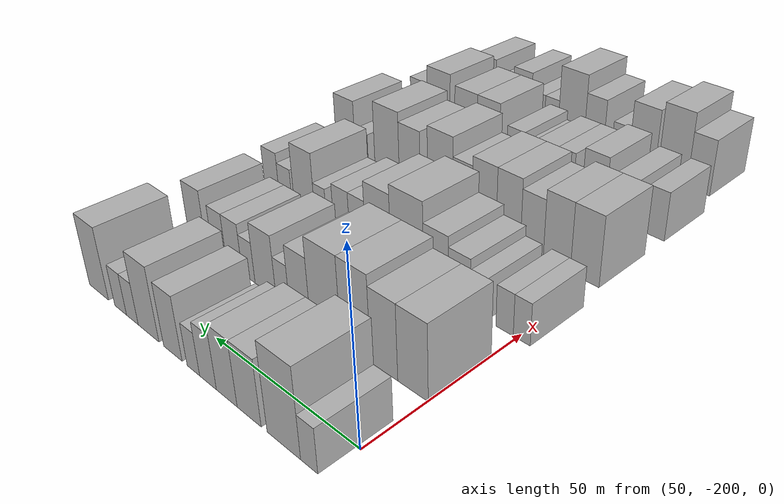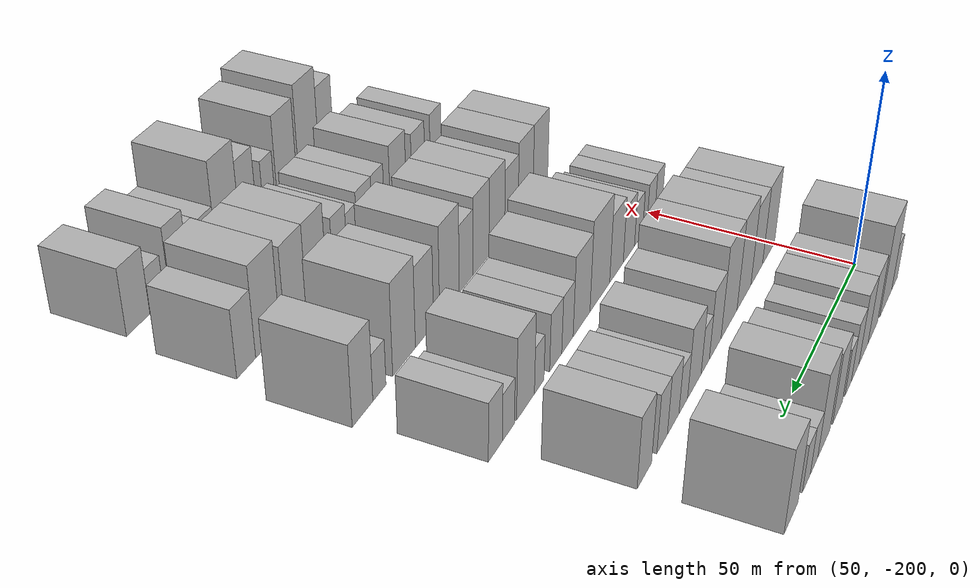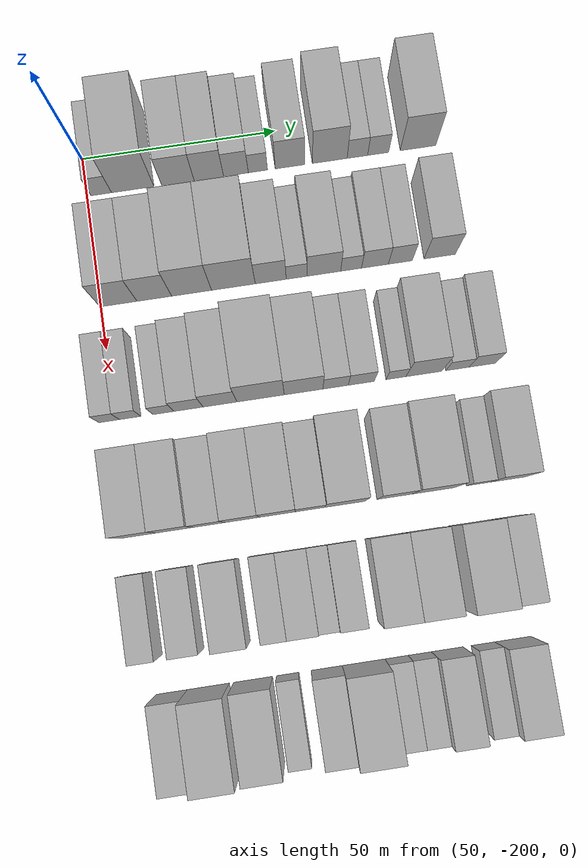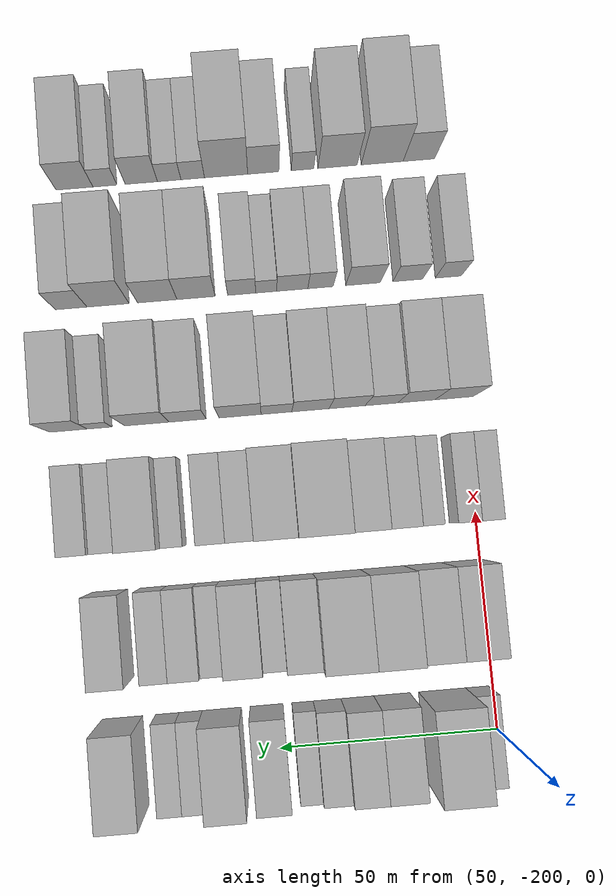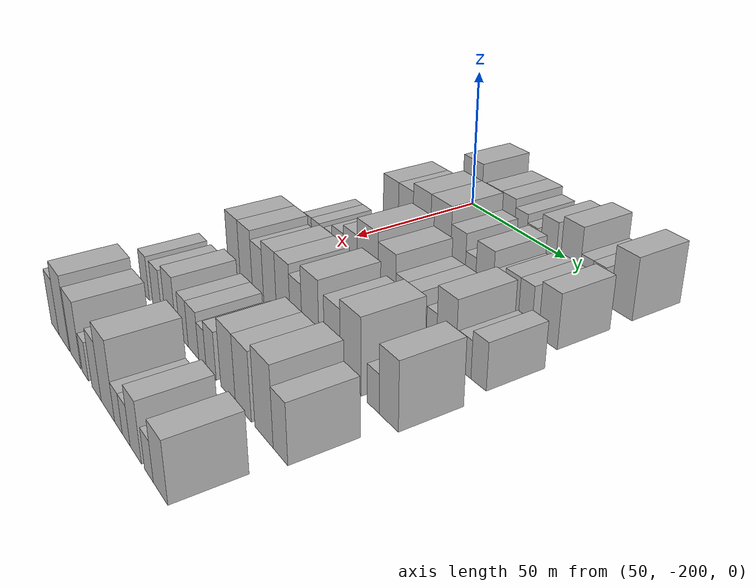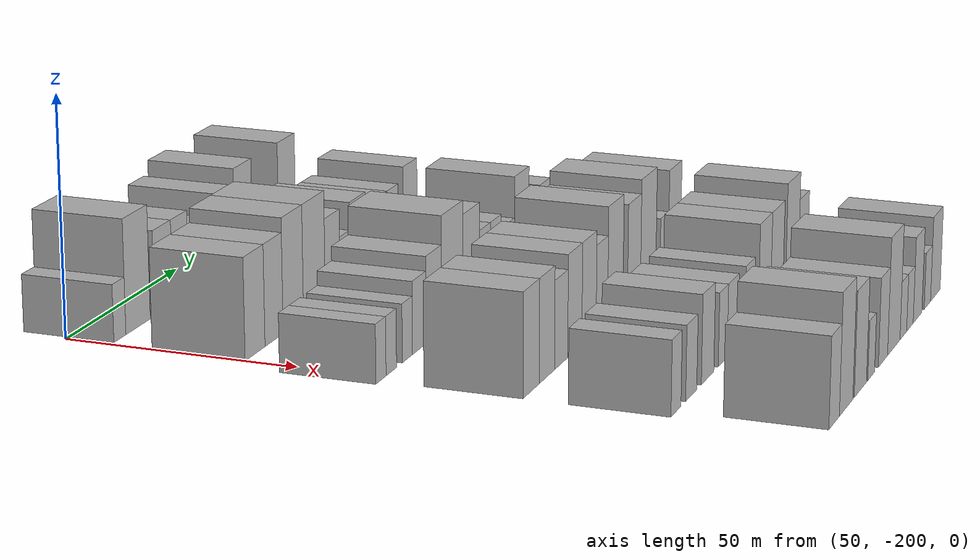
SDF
<sdf version="1.6">
 <world name="default">
  <model name="building_36">
   <static>1</static>
   <pose>50.0000 -196.2455 0 0.000000 0.000000 0.000000</pose>
   <link name="link">
    <pose>0 0 6.00 0 0 0</pose>
    <collision name="collision"><geometry><box><size>20.0000 5.2864 12.0000</size></box></geometry></collision>
    <visual name="visual">
     <cast_shadows>0</cast_shadows>
     <geometry><box><size>20.0000 5.2864 12.0000</size></box></geometry>
     <material>
      <script>
       <uri>model://HANNAS_wall/materials/scripts</uri>
       <uri>model://HANNAS_wall/materials/textures</uri>
       <name>vrc/HANNAS_wall</name>
      </script>
     </material>
    </visual>
   </link>
  </model>
  <model name="building_37">
   <static>1</static>
   <pose>50.0000 -188.1614 0 0.000000 0.000000 0.000000</pose>
   <link name="link">
    <pose>0 0 12.00 0 0 0</pose>
    <collision name="collision"><geometry><box><size>20.0000 10.8818 24.0000</size></box></geometry></collision>
    <visual name="visual">
     <cast_shadows>0</cast_shadows>
     <geometry><box><size>20.0000 10.8818 24.0000</size></box></geometry>
     <material>
      <script>
       <uri>model://HANNAS_wall/materials/scripts</uri>
       <uri>model://HANNAS_wall/materials/textures</uri>
       <name>vrc/HANNAS_wall</name>
      </script>
     </material>
    </visual>
   </link>
  </model>
  <model name="building_38">
   <static>1</static>
   <pose>50.0000 -176.5439 0 0.000000 0.000000 0.000000</pose>
   <link name="link">
    <pose>0 0 9.00 0 0 0</pose>
    <collision name="collision"><geometry><box><size>20.0000 8.3533 18.0000</size></box></geometry></collision>
    <visual name="visual">
     <cast_shadows>0</cast_shadows>
     <geometry><box><size>20.0000 8.3533 18.0000</size></box></geometry>
     <material>
      <script>
       <uri>model://HANNAS_wall/materials/scripts</uri>
       <uri>model://HANNAS_wall/materials/textures</uri>
       <name>vrc/HANNAS_wall</name>
      </script>
     </material>
    </visual>
   </link>
  </model>
  <model name="building_39">
   <static>1</static>
   <pose>50.0000 -168.5732 0 0.000000 0.000000 0.000000</pose>
   <link name="link">
    <pose>0 0 9.00 0 0 0</pose>
    <collision name="collision"><geometry><box><size>20.0000 7.5881 18.0000</size></box></geometry></collision>
    <visual name="visual">
     <cast_shadows>0</cast_shadows>
     <geometry><box><size>20.0000 7.5881 18.0000</size></box></geometry>
     <material>
      <script>
       <uri>model://HANNAS_wall/materials/scripts</uri>
       <uri>model://HANNAS_wall/materials/textures</uri>
       <name>vrc/HANNAS_wall</name>
      </script>
     </material>
    </visual>
   </link>
  </model>
  <model name="building_40">
   <static>1</static>
   <pose>50.0000 -161.5921 0 0.000000 0.000000 0.000000</pose>
   <link name="link">
    <pose>0 0 7.50 0 0 0</pose>
    <collision name="collision"><geometry><box><size>20.0000 6.3740 15.0000</size></box></geometry></collision>
    <visual name="visual">
     <cast_shadows>0</cast_shadows>
     <geometry><box><size>20.0000 6.3740 15.0000</size></box></geometry>
     <material>
      <script>
       <uri>model://HANNAS_wall/materials/scripts</uri>
       <uri>model://HANNAS_wall/materials/textures</uri>
       <name>vrc/HANNAS_wall</name>
      </script>
     </material>
    </visual>
   </link>
  </model>
  <model name="building_41">
   <static>1</static>
   <pose>50.0000 -155.9382 0 0.000000 0.000000 0.000000</pose>
   <link name="link">
    <pose>0 0 6.00 0 0 0</pose>
    <collision name="collision"><geometry><box><size>20.0000 4.9338 12.0000</size></box></geometry></collision>
    <visual name="visual">
     <cast_shadows>0</cast_shadows>
     <geometry><box><size>20.0000 4.9338 12.0000</size></box></geometry>
     <material>
      <script>
       <uri>model://HANNAS_wall/materials/scripts</uri>
       <uri>model://HANNAS_wall/materials/textures</uri>
       <name>vrc/HANNAS_wall</name>
      </script>
     </material>
    </visual>
   </link>
  </model>
  <model name="building_42">
   <static>1</static>
   <pose>50.0000 -147.6818 0 0.000000 0.000000 0.000000</pose>
   <link name="link">
    <pose>0 0 9.00 0 0 0</pose>
    <collision name="collision"><geometry><box><size>20.0000 7.5792 18.0000</size></box></geometry></collision>
    <visual name="visual">
     <cast_shadows>0</cast_shadows>
     <geometry><box><size>20.0000 7.5792 18.0000</size></box></geometry>
     <material>
      <script>
       <uri>model://HANNAS_wall/materials/scripts</uri>
       <uri>model://HANNAS_wall/materials/textures</uri>
       <name>vrc/HANNAS_wall</name>
      </script>
     </material>
    </visual>
   </link>
  </model>
  <model name="building_43">
   <static>1</static>
   <pose>50.0000 -137.3950 0 0.000000 0.000000 0.000000</pose>
   <link name="link">
    <pose>0 0 10.50 0 0 0</pose>
    <collision name="collision"><geometry><box><size>20.0000 8.9943 21.0000</size></box></geometry></collision>
    <visual name="visual">
     <cast_shadows>0</cast_shadows>
     <geometry><box><size>20.0000 8.9943 21.0000</size></box></geometry>
     <material>
      <script>
       <uri>model://HANNAS_wall/materials/scripts</uri>
       <uri>model://HANNAS_wall/materials/textures</uri>
       <name>vrc/HANNAS_wall</name>
      </script>
     </material>
    </visual>
   </link>
  </model>
  <model name="building_44">
   <static>1</static>
   <pose>50.0000 -130.2456 0 0.000000 0.000000 0.000000</pose>
   <link name="link">
    <pose>0 0 6.00 0 0 0</pose>
    <collision name="collision"><geometry><box><size>20.0000 5.3045 12.0000</size></box></geometry></collision>
    <visual name="visual">
     <cast_shadows>0</cast_shadows>
     <geometry><box><size>20.0000 5.3045 12.0000</size></box></geometry>
     <material>
      <script>
       <uri>model://HANNAS_wall/materials/scripts</uri>
       <uri>model://HANNAS_wall/materials/textures</uri>
       <name>vrc/HANNAS_wall</name>
      </script>
     </material>
    </visual>
   </link>
  </model>
  <model name="building_45">
   <static>1</static>
   <pose>50.0000 -124.8736 0 0.000000 0.000000 0.000000</pose>
   <link name="link">
    <pose>0 0 6.00 0 0 0</pose>
    <collision name="collision"><geometry><box><size>20.0000 5.4396 12.0000</size></box></geometry></collision>
    <visual name="visual">
     <cast_shadows>0</cast_shadows>
     <geometry><box><size>20.0000 5.4396 12.0000</size></box></geometry>
     <material>
      <script>
       <uri>model://HANNAS_wall/materials/scripts</uri>
       <uri>model://HANNAS_wall/materials/textures</uri>
       <name>vrc/HANNAS_wall</name>
      </script>
     </material>
    </visual>
   </link>
  </model>
  <model name="building_46">
   <static>1</static>
   <pose>50.0000 -114.5271 0 0.000000 0.000000 0.000000</pose>
   <link name="link">
    <pose>0 0 10.50 0 0 0</pose>
    <collision name="collision"><geometry><box><size>20.0000 9.2535 21.0000</size></box></geometry></collision>
    <visual name="visual">
     <cast_shadows>0</cast_shadows>
     <geometry><box><size>20.0000 9.2535 21.0000</size></box></geometry>
     <material>
      <script>
       <uri>model://HANNAS_wall/materials/scripts</uri>
       <uri>model://HANNAS_wall/materials/textures</uri>
       <name>vrc/HANNAS_wall</name>
      </script>
     </material>
    </visual>
   </link>
  </model>
  <model name="building_144">
   <static>1</static>
   <pose>79.0000 -195.5140 0 0.000000 0.000000 0.000000</pose>
   <link name="link">
    <pose>0 0 10.50 0 0 0</pose>
    <collision name="collision"><geometry><box><size>20.0000 9.3839 21.0000</size></box></geometry></collision>
    <visual name="visual">
     <cast_shadows>0</cast_shadows>
     <geometry><box><size>20.0000 9.3839 21.0000</size></box></geometry>
     <material>
      <script>
       <uri>model://HANNAS_wall/materials/scripts</uri>
       <uri>model://HANNAS_wall/materials/textures</uri>
       <name>vrc/HANNAS_wall</name>
      </script>
     </material>
    </visual>
   </link>
  </model>
  <model name="building_145">
   <static>1</static>
   <pose>79.0000 -186.4404 0 0.000000 0.000000 0.000000</pose>
   <link name="link">
    <pose>0 0 10.50 0 0 0</pose>
    <collision name="collision"><geometry><box><size>20.0000 8.7632 21.0000</size></box></geometry></collision>
    <visual name="visual">
     <cast_shadows>0</cast_shadows>
     <geometry><box><size>20.0000 8.7632 21.0000</size></box></geometry>
     <material>
      <script>
       <uri>model://HANNAS_wall/materials/scripts</uri>
       <uri>model://HANNAS_wall/materials/textures</uri>
       <name>vrc/HANNAS_wall</name>
      </script>
     </material>
    </visual>
   </link>
  </model>
  <model name="building_146">
   <static>1</static>
   <pose>79.0000 -176.9976 0 0.000000 0.000000 0.000000</pose>
   <link name="link">
    <pose>0 0 12.00 0 0 0</pose>
    <collision name="collision"><geometry><box><size>20.0000 10.1224 24.0000</size></box></geometry></collision>
    <visual name="visual">
     <cast_shadows>0</cast_shadows>
     <geometry><box><size>20.0000 10.1224 24.0000</size></box></geometry>
     <material>
      <script>
       <uri>model://HANNAS_wall/materials/scripts</uri>
       <uri>model://HANNAS_wall/materials/textures</uri>
       <name>vrc/HANNAS_wall</name>
      </script>
     </material>
    </visual>
   </link>
  </model>
  <model name="building_147">
   <static>1</static>
   <pose>79.0000 -166.3754 0 0.000000 0.000000 0.000000</pose>
   <link name="link">
    <pose>0 0 12.00 0 0 0</pose>
    <collision name="collision"><geometry><box><size>20.0000 11.1220 24.0000</size></box></geometry></collision>
    <visual name="visual">
     <cast_shadows>0</cast_shadows>
     <geometry><box><size>20.0000 11.1220 24.0000</size></box></geometry>
     <material>
      <script>
       <uri>model://HANNAS_wall/materials/scripts</uri>
       <uri>model://HANNAS_wall/materials/textures</uri>
       <name>vrc/HANNAS_wall</name>
      </script>
     </material>
    </visual>
   </link>
  </model>
  <model name="building_148">
   <static>1</static>
   <pose>79.0000 -156.8908 0 0.000000 0.000000 0.000000</pose>
   <link name="link">
    <pose>0 0 9.00 0 0 0</pose>
    <collision name="collision"><geometry><box><size>20.0000 7.8473 18.0000</size></box></geometry></collision>
    <visual name="visual">
     <cast_shadows>0</cast_shadows>
     <geometry><box><size>20.0000 7.8473 18.0000</size></box></geometry>
     <material>
      <script>
       <uri>model://HANNAS_wall/materials/scripts</uri>
       <uri>model://HANNAS_wall/materials/textures</uri>
       <name>vrc/HANNAS_wall</name>
      </script>
     </material>
    </visual>
   </link>
  </model>
  <model name="building_149">
   <static>1</static>
   <pose>79.0000 -150.3116 0 0.000000 0.000000 0.000000</pose>
   <link name="link">
    <pose>0 0 6.00 0 0 0</pose>
    <collision name="collision"><geometry><box><size>20.0000 5.3111 12.0000</size></box></geometry></collision>
    <visual name="visual">
     <cast_shadows>0</cast_shadows>
     <geometry><box><size>20.0000 5.3111 12.0000</size></box></geometry>
     <material>
      <script>
       <uri>model://HANNAS_wall/materials/scripts</uri>
       <uri>model://HANNAS_wall/materials/textures</uri>
       <name>vrc/HANNAS_wall</name>
      </script>
     </material>
    </visual>
   </link>
  </model>
  <model name="building_150">
   <static>1</static>
   <pose>79.0000 -143.3771 0 0.000000 0.000000 0.000000</pose>
   <link name="link">
    <pose>0 0 9.00 0 0 0</pose>
    <collision name="collision"><geometry><box><size>20.0000 8.5578 18.0000</size></box></geometry></collision>
    <visual name="visual">
     <cast_shadows>0</cast_shadows>
     <geometry><box><size>20.0000 8.5578 18.0000</size></box></geometry>
     <material>
      <script>
       <uri>model://HANNAS_wall/materials/scripts</uri>
       <uri>model://HANNAS_wall/materials/textures</uri>
       <name>vrc/HANNAS_wall</name>
      </script>
     </material>
    </visual>
   </link>
  </model>
  <model name="building_151">
   <static>1</static>
   <pose>79.0000 -136.4472 0 0.000000 0.000000 0.000000</pose>
   <link name="link">
    <pose>0 0 6.00 0 0 0</pose>
    <collision name="collision"><geometry><box><size>20.0000 5.3020 12.0000</size></box></geometry></collision>
    <visual name="visual">
     <cast_shadows>0</cast_shadows>
     <geometry><box><size>20.0000 5.3020 12.0000</size></box></geometry>
     <material>
      <script>
       <uri>model://HANNAS_wall/materials/scripts</uri>
       <uri>model://HANNAS_wall/materials/textures</uri>
       <name>vrc/HANNAS_wall</name>
      </script>
     </material>
    </visual>
   </link>
  </model>
  <model name="building_152">
   <static>1</static>
   <pose>79.0000 -130.3634 0 0.000000 0.000000 0.000000</pose>
   <link name="link">
    <pose>0 0 7.50 0 0 0</pose>
    <collision name="collision"><geometry><box><size>20.0000 6.8655 15.0000</size></box></geometry></collision>
    <visual name="visual">
     <cast_shadows>0</cast_shadows>
     <geometry><box><size>20.0000 6.8655 15.0000</size></box></geometry>
     <material>
      <script>
       <uri>model://HANNAS_wall/materials/scripts</uri>
       <uri>model://HANNAS_wall/materials/textures</uri>
       <name>vrc/HANNAS_wall</name>
      </script>
     </material>
    </visual>
   </link>
  </model>
  <model name="building_153">
   <static>1</static>
   <pose>79.0000 -123.8739 0 0.000000 0.000000 0.000000</pose>
   <link name="link">
    <pose>0 0 7.50 0 0 0</pose>
    <collision name="collision"><geometry><box><size>20.0000 6.1134 15.0000</size></box></geometry></collision>
    <visual name="visual">
     <cast_shadows>0</cast_shadows>
     <geometry><box><size>20.0000 6.1134 15.0000</size></box></geometry>
     <material>
      <script>
       <uri>model://HANNAS_wall/materials/scripts</uri>
       <uri>model://HANNAS_wall/materials/textures</uri>
       <name>vrc/HANNAS_wall</name>
      </script>
     </material>
    </visual>
   </link>
  </model>
  <model name="building_154">
   <static>1</static>
   <pose>79.0000 -113.8031 0 0.000000 0.000000 0.000000</pose>
   <link name="link">
    <pose>0 0 9.00 0 0 0</pose>
    <collision name="collision"><geometry><box><size>20.0000 8.0283 18.0000</size></box></geometry></collision>
    <visual name="visual">
     <cast_shadows>0</cast_shadows>
     <geometry><box><size>20.0000 8.0283 18.0000</size></box></geometry>
     <material>
      <script>
       <uri>model://HANNAS_wall/materials/scripts</uri>
       <uri>model://HANNAS_wall/materials/textures</uri>
       <name>vrc/HANNAS_wall</name>
      </script>
     </material>
    </visual>
   </link>
  </model>
  <model name="building_259">
   <static>1</static>
   <pose>108.0000 -201.5399 0 0.000000 0.000000 0.000000</pose>
   <link name="link">
    <pose>0 0 6.00 0 0 0</pose>
    <collision name="collision"><geometry><box><size>20.0000 5.0856 12.0000</size></box></geometry></collision>
    <visual name="visual">
     <cast_shadows>0</cast_shadows>
     <geometry><box><size>20.0000 5.0856 12.0000</size></box></geometry>
     <material>
      <script>
       <uri>model://HANNAS_wall/materials/scripts</uri>
       <uri>model://HANNAS_wall/materials/textures</uri>
       <name>vrc/HANNAS_wall</name>
      </script>
     </material>
    </visual>
   </link>
  </model>
  <model name="building_260">
   <static>1</static>
   <pose>108.0000 -196.3229 0 0.000000 0.000000 0.000000</pose>
   <link name="link">
    <pose>0 0 6.00 0 0 0</pose>
    <collision name="collision"><geometry><box><size>20.0000 5.3484 12.0000</size></box></geometry></collision>
    <visual name="visual">
     <cast_shadows>0</cast_shadows>
     <geometry><box><size>20.0000 5.3484 12.0000</size></box></geometry>
     <material>
      <script>
       <uri>model://HANNAS_wall/materials/scripts</uri>
       <uri>model://HANNAS_wall/materials/textures</uri>
       <name>vrc/HANNAS_wall</name>
      </script>
     </material>
    </visual>
   </link>
  </model>
  <model name="building_261">
   <static>1</static>
   <pose>108.0000 -188.0071 0 0.000000 0.000000 0.000000</pose>
   <link name="link">
    <pose>0 0 6.00 0 0 0</pose>
    <collision name="collision"><geometry><box><size>20.0000 5.2833 12.0000</size></box></geometry></collision>
    <visual name="visual">
     <cast_shadows>0</cast_shadows>
     <geometry><box><size>20.0000 5.2833 12.0000</size></box></geometry>
     <material>
      <script>
       <uri>model://HANNAS_wall/materials/scripts</uri>
       <uri>model://HANNAS_wall/materials/textures</uri>
       <name>vrc/HANNAS_wall</name>
      </script>
     </material>
    </visual>
   </link>
  </model>
  <model name="building_262">
   <static>1</static>
   <pose>108.0000 -181.7350 0 0.000000 0.000000 0.000000</pose>
   <link name="link">
    <pose>0 0 7.50 0 0 0</pose>
    <collision name="collision"><geometry><box><size>20.0000 7.2608 15.0000</size></box></geometry></collision>
    <visual name="visual">
     <cast_shadows>0</cast_shadows>
     <geometry><box><size>20.0000 7.2608 15.0000</size></box></geometry>
     <material>
      <script>
       <uri>model://HANNAS_wall/materials/scripts</uri>
       <uri>model://HANNAS_wall/materials/textures</uri>
       <name>vrc/HANNAS_wall</name>
      </script>
     </material>
    </visual>
   </link>
  </model>
  <model name="building_263">
   <static>1</static>
   <pose>108.0000 -173.8583 0 0.000000 0.000000 0.000000</pose>
   <link name="link">
    <pose>0 0 9.00 0 0 0</pose>
    <collision name="collision"><geometry><box><size>20.0000 8.4925 18.0000</size></box></geometry></collision>
    <visual name="visual">
     <cast_shadows>0</cast_shadows>
     <geometry><box><size>20.0000 8.4925 18.0000</size></box></geometry>
     <material>
      <script>
       <uri>model://HANNAS_wall/materials/scripts</uri>
       <uri>model://HANNAS_wall/materials/textures</uri>
       <name>vrc/HANNAS_wall</name>
      </script>
     </material>
    </visual>
   </link>
  </model>
  <model name="building_264">
   <static>1</static>
   <pose>108.0000 -163.6928 0 0.000000 0.000000 0.000000</pose>
   <link name="link">
    <pose>0 0 12.00 0 0 0</pose>
    <collision name="collision"><geometry><box><size>20.0000 11.8386 24.0000</size></box></geometry></collision>
    <visual name="visual">
     <cast_shadows>0</cast_shadows>
     <geometry><box><size>20.0000 11.8386 24.0000</size></box></geometry>
     <material>
      <script>
       <uri>model://HANNAS_wall/materials/scripts</uri>
       <uri>model://HANNAS_wall/materials/textures</uri>
       <name>vrc/HANNAS_wall</name>
      </script>
     </material>
    </visual>
   </link>
  </model>
  <model name="building_265">
   <static>1</static>
   <pose>108.0000 -152.9348 0 0.000000 0.000000 0.000000</pose>
   <link name="link">
    <pose>0 0 10.50 0 0 0</pose>
    <collision name="collision"><geometry><box><size>20.0000 9.6774 21.0000</size></box></geometry></collision>
    <visual name="visual">
     <cast_shadows>0</cast_shadows>
     <geometry><box><size>20.0000 9.6774 21.0000</size></box></geometry>
     <material>
      <script>
       <uri>model://HANNAS_wall/materials/scripts</uri>
       <uri>model://HANNAS_wall/materials/textures</uri>
       <name>vrc/HANNAS_wall</name>
      </script>
     </material>
    </visual>
   </link>
  </model>
  <model name="building_266">
   <static>1</static>
   <pose>108.0000 -144.9207 0 0.000000 0.000000 0.000000</pose>
   <link name="link">
    <pose>0 0 7.50 0 0 0</pose>
    <collision name="collision"><geometry><box><size>20.0000 6.3508 15.0000</size></box></geometry></collision>
    <visual name="visual">
     <cast_shadows>0</cast_shadows>
     <geometry><box><size>20.0000 6.3508 15.0000</size></box></geometry>
     <material>
      <script>
       <uri>model://HANNAS_wall/materials/scripts</uri>
       <uri>model://HANNAS_wall/materials/textures</uri>
       <name>vrc/HANNAS_wall</name>
      </script>
     </material>
    </visual>
   </link>
  </model>
  <model name="building_267">
   <static>1</static>
   <pose>108.0000 -138.4725 0 0.000000 0.000000 0.000000</pose>
   <link name="link">
    <pose>0 0 7.50 0 0 0</pose>
    <collision name="collision"><geometry><box><size>20.0000 6.5455 15.0000</size></box></geometry></collision>
    <visual name="visual">
     <cast_shadows>0</cast_shadows>
     <geometry><box><size>20.0000 6.5455 15.0000</size></box></geometry>
     <material>
      <script>
       <uri>model://HANNAS_wall/materials/scripts</uri>
       <uri>model://HANNAS_wall/materials/textures</uri>
       <name>vrc/HANNAS_wall</name>
      </script>
     </material>
    </visual>
   </link>
  </model>
  <model name="building_268">
   <static>1</static>
   <pose>108.0000 -129.7071 0 0.000000 0.000000 0.000000</pose>
   <link name="link">
    <pose>0 0 6.00 0 0 0</pose>
    <collision name="collision"><geometry><box><size>20.0000 4.9853 12.0000</size></box></geometry></collision>
    <visual name="visual">
     <cast_shadows>0</cast_shadows>
     <geometry><box><size>20.0000 4.9853 12.0000</size></box></geometry>
     <material>
      <script>
       <uri>model://HANNAS_wall/materials/scripts</uri>
       <uri>model://HANNAS_wall/materials/textures</uri>
       <name>vrc/HANNAS_wall</name>
      </script>
     </material>
    </visual>
   </link>
  </model>
  <model name="building_269">
   <static>1</static>
   <pose>108.0000 -122.6812 0 0.000000 0.000000 0.000000</pose>
   <link name="link">
    <pose>0 0 10.50 0 0 0</pose>
    <collision name="collision"><geometry><box><size>20.0000 9.0665 21.0000</size></box></geometry></collision>
    <visual name="visual">
     <cast_shadows>0</cast_shadows>
     <geometry><box><size>20.0000 9.0665 21.0000</size></box></geometry>
     <material>
      <script>
       <uri>model://HANNAS_wall/materials/scripts</uri>
       <uri>model://HANNAS_wall/materials/textures</uri>
       <name>vrc/HANNAS_wall</name>
      </script>
     </material>
    </visual>
   </link>
  </model>
  <model name="building_270">
   <static>1</static>
   <pose>108.0000 -114.2098 0 0.000000 0.000000 0.000000</pose>
   <link name="link">
    <pose>0 0 6.00 0 0 0</pose>
    <collision name="collision"><geometry><box><size>20.0000 5.8764 12.0000</size></box></geometry></collision>
    <visual name="visual">
     <cast_shadows>0</cast_shadows>
     <geometry><box><size>20.0000 5.8764 12.0000</size></box></geometry>
     <material>
      <script>
       <uri>model://HANNAS_wall/materials/scripts</uri>
       <uri>model://HANNAS_wall/materials/textures</uri>
       <name>vrc/HANNAS_wall</name>
      </script>
     </material>
    </visual>
   </link>
  </model>
  <model name="building_271">
   <static>1</static>
   <pose>108.0000 -107.9398 0 0.000000 0.000000 0.000000</pose>
   <link name="link">
    <pose>0 0 7.50 0 0 0</pose>
    <collision name="collision"><geometry><box><size>20.0000 6.6634 15.0000</size></box></geometry></collision>
    <visual name="visual">
     <cast_shadows>0</cast_shadows>
     <geometry><box><size>20.0000 6.6634 15.0000</size></box></geometry>
     <material>
      <script>
       <uri>model://HANNAS_wall/materials/scripts</uri>
       <uri>model://HANNAS_wall/materials/textures</uri>
       <name>vrc/HANNAS_wall</name>
      </script>
     </material>
    </visual>
   </link>
  </model>
  <model name="building_375">
   <static>1</static>
   <pose>137.0000 -197.6349 0 0.000000 0.000000 0.000000</pose>
   <link name="link">
    <pose>0 0 10.50 0 0 0</pose>
    <collision name="collision"><geometry><box><size>20.0000 8.9891 21.0000</size></box></geometry></collision>
    <visual name="visual">
     <cast_shadows>0</cast_shadows>
     <geometry><box><size>20.0000 8.9891 21.0000</size></box></geometry>
     <material>
      <script>
       <uri>model://HANNAS_wall/materials/scripts</uri>
       <uri>model://HANNAS_wall/materials/textures</uri>
       <name>vrc/HANNAS_wall</name>
      </script>
     </material>
    </visual>
   </link>
  </model>
  <model name="building_376">
   <static>1</static>
   <pose>137.0000 -188.7440 0 0.000000 0.000000 0.000000</pose>
   <link name="link">
    <pose>0 0 10.50 0 0 0</pose>
    <collision name="collision"><geometry><box><size>20.0000 8.7927 21.0000</size></box></geometry></collision>
    <visual name="visual">
     <cast_shadows>0</cast_shadows>
     <geometry><box><size>20.0000 8.7927 21.0000</size></box></geometry>
     <material>
      <script>
       <uri>model://HANNAS_wall/materials/scripts</uri>
       <uri>model://HANNAS_wall/materials/textures</uri>
       <name>vrc/HANNAS_wall</name>
      </script>
     </material>
    </visual>
   </link>
  </model>
  <model name="building_377">
   <static>1</static>
   <pose>137.0000 -180.4792 0 0.000000 0.000000 0.000000</pose>
   <link name="link">
    <pose>0 0 9.00 0 0 0</pose>
    <collision name="collision"><geometry><box><size>20.0000 7.7370 18.0000</size></box></geometry></collision>
    <visual name="visual">
     <cast_shadows>0</cast_shadows>
     <geometry><box><size>20.0000 7.7370 18.0000</size></box></geometry>
     <material>
      <script>
       <uri>model://HANNAS_wall/materials/scripts</uri>
       <uri>model://HANNAS_wall/materials/textures</uri>
       <name>vrc/HANNAS_wall</name>
      </script>
     </material>
    </visual>
   </link>
  </model>
  <model name="building_378">
   <static>1</static>
   <pose>137.0000 -172.3434 0 0.000000 0.000000 0.000000</pose>
   <link name="link">
    <pose>0 0 10.50 0 0 0</pose>
    <collision name="collision"><geometry><box><size>20.0000 8.5346 21.0000</size></box></geometry></collision>
    <visual name="visual">
     <cast_shadows>0</cast_shadows>
     <geometry><box><size>20.0000 8.5346 21.0000</size></box></geometry>
     <material>
      <script>
       <uri>model://HANNAS_wall/materials/scripts</uri>
       <uri>model://HANNAS_wall/materials/textures</uri>
       <name>vrc/HANNAS_wall</name>
      </script>
     </material>
    </visual>
   </link>
  </model>
  <model name="building_379">
   <static>1</static>
   <pose>137.0000 -163.6759 0 0.000000 0.000000 0.000000</pose>
   <link name="link">
    <pose>0 0 10.50 0 0 0</pose>
    <collision name="collision"><geometry><box><size>20.0000 8.8003 21.0000</size></box></geometry></collision>
    <visual name="visual">
     <cast_shadows>0</cast_shadows>
     <geometry><box><size>20.0000 8.8003 21.0000</size></box></geometry>
     <material>
      <script>
       <uri>model://HANNAS_wall/materials/scripts</uri>
       <uri>model://HANNAS_wall/materials/textures</uri>
       <name>vrc/HANNAS_wall</name>
      </script>
     </material>
    </visual>
   </link>
  </model>
  <model name="building_380">
   <static>1</static>
   <pose>137.0000 -155.6607 0 0.000000 0.000000 0.000000</pose>
   <link name="link">
    <pose>0 0 9.00 0 0 0</pose>
    <collision name="collision"><geometry><box><size>20.0000 7.2302 18.0000</size></box></geometry></collision>
    <visual name="visual">
     <cast_shadows>0</cast_shadows>
     <geometry><box><size>20.0000 7.2302 18.0000</size></box></geometry>
     <material>
      <script>
       <uri>model://HANNAS_wall/materials/scripts</uri>
       <uri>model://HANNAS_wall/materials/textures</uri>
       <name>vrc/HANNAS_wall</name>
      </script>
     </material>
    </visual>
   </link>
  </model>
  <model name="building_381">
   <static>1</static>
   <pose>137.0000 -147.0998 0 0.000000 0.000000 0.000000</pose>
   <link name="link">
    <pose>0 0 12.00 0 0 0</pose>
    <collision name="collision"><geometry><box><size>20.0000 9.8915 24.0000</size></box></geometry></collision>
    <visual name="visual">
     <cast_shadows>0</cast_shadows>
     <geometry><box><size>20.0000 9.8915 24.0000</size></box></geometry>
     <material>
      <script>
       <uri>model://HANNAS_wall/materials/scripts</uri>
       <uri>model://HANNAS_wall/materials/textures</uri>
       <name>vrc/HANNAS_wall</name>
      </script>
     </material>
    </visual>
   </link>
  </model>
  <model name="building_382">
   <static>1</static>
   <pose>137.0000 -134.8146 0 0.000000 0.000000 0.000000</pose>
   <link name="link">
    <pose>0 0 10.50 0 0 0</pose>
    <collision name="collision"><geometry><box><size>20.0000 8.6790 21.0000</size></box></geometry></collision>
    <visual name="visual">
     <cast_shadows>0</cast_shadows>
     <geometry><box><size>20.0000 8.6790 21.0000</size></box></geometry>
     <material>
      <script>
       <uri>model://HANNAS_wall/materials/scripts</uri>
       <uri>model://HANNAS_wall/materials/textures</uri>
       <name>vrc/HANNAS_wall</name>
      </script>
     </material>
    </visual>
   </link>
  </model>
  <model name="building_383">
   <static>1</static>
   <pose>137.0000 -125.2218 0 0.000000 0.000000 0.000000</pose>
   <link name="link">
    <pose>0 0 12.00 0 0 0</pose>
    <collision name="collision"><geometry><box><size>20.0000 10.5066 24.0000</size></box></geometry></collision>
    <visual name="visual">
     <cast_shadows>0</cast_shadows>
     <geometry><box><size>20.0000 10.5066 24.0000</size></box></geometry>
     <material>
      <script>
       <uri>model://HANNAS_wall/materials/scripts</uri>
       <uri>model://HANNAS_wall/materials/textures</uri>
       <name>vrc/HANNAS_wall</name>
      </script>
     </material>
    </visual>
   </link>
  </model>
  <model name="building_384">
   <static>1</static>
   <pose>137.0000 -114.0807 0 0.000000 0.000000 0.000000</pose>
   <link name="link">
    <pose>0 0 6.00 0 0 0</pose>
    <collision name="collision"><geometry><box><size>20.0000 5.7754 12.0000</size></box></geometry></collision>
    <visual name="visual">
     <cast_shadows>0</cast_shadows>
     <geometry><box><size>20.0000 5.7754 12.0000</size></box></geometry>
     <material>
      <script>
       <uri>model://HANNAS_wall/materials/scripts</uri>
       <uri>model://HANNAS_wall/materials/textures</uri>
       <name>vrc/HANNAS_wall</name>
      </script>
     </material>
    </visual>
   </link>
  </model>
  <model name="building_385">
   <static>1</static>
   <pose>137.0000 -106.7795 0 0.000000 0.000000 0.000000</pose>
   <link name="link">
    <pose>0 0 10.50 0 0 0</pose>
    <collision name="collision"><geometry><box><size>20.0000 8.8271 21.0000</size></box></geometry></collision>
    <visual name="visual">
     <cast_shadows>0</cast_shadows>
     <geometry><box><size>20.0000 8.8271 21.0000</size></box></geometry>
     <material>
      <script>
       <uri>model://HANNAS_wall/materials/scripts</uri>
       <uri>model://HANNAS_wall/materials/textures</uri>
       <name>vrc/HANNAS_wall</name>
      </script>
     </material>
    </visual>
   </link>
  </model>
  <model name="building_488">
   <static>1</static>
   <pose>166.0000 -199.1591 0 0.000000 0.000000 0.000000</pose>
   <link name="link">
    <pose>0 0 7.50 0 0 0</pose>
    <collision name="collision"><geometry><box><size>20.0000 6.2230 15.0000</size></box></geometry></collision>
    <visual name="visual">
     <cast_shadows>0</cast_shadows>
     <geometry><box><size>20.0000 6.2230 15.0000</size></box></geometry>
     <material>
      <script>
       <uri>model://HANNAS_wall/materials/scripts</uri>
       <uri>model://HANNAS_wall/materials/textures</uri>
       <name>vrc/HANNAS_wall</name>
      </script>
     </material>
    </visual>
   </link>
  </model>
  <model name="building_489">
   <static>1</static>
   <pose>166.0000 -189.4908 0 0.000000 0.000000 0.000000</pose>
   <link name="link">
    <pose>0 0 7.50 0 0 0</pose>
    <collision name="collision"><geometry><box><size>20.0000 7.1136 15.0000</size></box></geometry></collision>
    <visual name="visual">
     <cast_shadows>0</cast_shadows>
     <geometry><box><size>20.0000 7.1136 15.0000</size></box></geometry>
     <material>
      <script>
       <uri>model://HANNAS_wall/materials/scripts</uri>
       <uri>model://HANNAS_wall/materials/textures</uri>
       <name>vrc/HANNAS_wall</name>
      </script>
     </material>
    </visual>
   </link>
  </model>
  <model name="building_490">
   <static>1</static>
   <pose>166.0000 -178.8022 0 0.000000 0.000000 0.000000</pose>
   <link name="link">
    <pose>0 0 9.00 0 0 0</pose>
    <collision name="collision"><geometry><box><size>20.0000 8.2636 18.0000</size></box></geometry></collision>
    <visual name="visual">
     <cast_shadows>0</cast_shadows>
     <geometry><box><size>20.0000 8.2636 18.0000</size></box></geometry>
     <material>
      <script>
       <uri>model://HANNAS_wall/materials/scripts</uri>
       <uri>model://HANNAS_wall/materials/textures</uri>
       <name>vrc/HANNAS_wall</name>
      </script>
     </material>
    </visual>
   </link>
  </model>
  <model name="building_491">
   <static>1</static>
   <pose>166.0000 -168.6431 0 0.000000 0.000000 0.000000</pose>
   <link name="link">
    <pose>0 0 7.50 0 0 0</pose>
    <collision name="collision"><geometry><box><size>20.0000 6.0545 15.0000</size></box></geometry></collision>
    <visual name="visual">
     <cast_shadows>0</cast_shadows>
     <geometry><box><size>20.0000 6.0545 15.0000</size></box></geometry>
     <material>
      <script>
       <uri>model://HANNAS_wall/materials/scripts</uri>
       <uri>model://HANNAS_wall/materials/textures</uri>
       <name>vrc/HANNAS_wall</name>
      </script>
     </material>
    </visual>
   </link>
  </model>
  <model name="building_492">
   <static>1</static>
   <pose>166.0000 -161.9110 0 0.000000 0.000000 0.000000</pose>
   <link name="link">
    <pose>0 0 7.50 0 0 0</pose>
    <collision name="collision"><geometry><box><size>20.0000 7.4095 15.0000</size></box></geometry></collision>
    <visual name="visual">
     <cast_shadows>0</cast_shadows>
     <geometry><box><size>20.0000 7.4095 15.0000</size></box></geometry>
     <material>
      <script>
       <uri>model://HANNAS_wall/materials/scripts</uri>
       <uri>model://HANNAS_wall/materials/textures</uri>
       <name>vrc/HANNAS_wall</name>
      </script>
     </material>
    </visual>
   </link>
  </model>
  <model name="building_493">
   <static>1</static>
   <pose>166.0000 -155.7084 0 0.000000 0.000000 0.000000</pose>
   <link name="link">
    <pose>0 0 6.00 0 0 0</pose>
    <collision name="collision"><geometry><box><size>20.0000 4.9957 12.0000</size></box></geometry></collision>
    <visual name="visual">
     <cast_shadows>0</cast_shadows>
     <geometry><box><size>20.0000 4.9957 12.0000</size></box></geometry>
     <material>
      <script>
       <uri>model://HANNAS_wall/materials/scripts</uri>
       <uri>model://HANNAS_wall/materials/textures</uri>
       <name>vrc/HANNAS_wall</name>
      </script>
     </material>
    </visual>
   </link>
  </model>
  <model name="building_494">
   <static>1</static>
   <pose>166.0000 -149.8869 0 0.000000 0.000000 0.000000</pose>
   <link name="link">
    <pose>0 0 7.50 0 0 0</pose>
    <collision name="collision"><geometry><box><size>20.0000 6.6474 15.0000</size></box></geometry></collision>
    <visual name="visual">
     <cast_shadows>0</cast_shadows>
     <geometry><box><size>20.0000 6.6474 15.0000</size></box></geometry>
     <material>
      <script>
       <uri>model://HANNAS_wall/materials/scripts</uri>
       <uri>model://HANNAS_wall/materials/textures</uri>
       <name>vrc/HANNAS_wall</name>
      </script>
     </material>
    </visual>
   </link>
  </model>
  <model name="building_495">
   <static>1</static>
   <pose>166.0000 -139.0278 0 0.000000 0.000000 0.000000</pose>
   <link name="link">
    <pose>0 0 10.50 0 0 0</pose>
    <collision name="collision"><geometry><box><size>20.0000 9.0709 21.0000</size></box></geometry></collision>
    <visual name="visual">
     <cast_shadows>0</cast_shadows>
     <geometry><box><size>20.0000 9.0709 21.0000</size></box></geometry>
     <material>
      <script>
       <uri>model://HANNAS_wall/materials/scripts</uri>
       <uri>model://HANNAS_wall/materials/textures</uri>
       <name>vrc/HANNAS_wall</name>
      </script>
     </material>
    </visual>
   </link>
  </model>
  <model name="building_496">
   <static>1</static>
   <pose>166.0000 -129.8001 0 0.000000 0.000000 0.000000</pose>
   <link name="link">
    <pose>0 0 10.50 0 0 0</pose>
    <collision name="collision"><geometry><box><size>20.0000 9.3844 21.0000</size></box></geometry></collision>
    <visual name="visual">
     <cast_shadows>0</cast_shadows>
     <geometry><box><size>20.0000 9.3844 21.0000</size></box></geometry>
     <material>
      <script>
       <uri>model://HANNAS_wall/materials/scripts</uri>
       <uri>model://HANNAS_wall/materials/textures</uri>
       <name>vrc/HANNAS_wall</name>
      </script>
     </material>
    </visual>
   </link>
  </model>
  <model name="building_497">
   <static>1</static>
   <pose>166.0000 -118.1059 0 0.000000 0.000000 0.000000</pose>
   <link name="link">
    <pose>0 0 12.00 0 0 0</pose>
    <collision name="collision"><geometry><box><size>20.0000 10.0039 24.0000</size></box></geometry></collision>
    <visual name="visual">
     <cast_shadows>0</cast_shadows>
     <geometry><box><size>20.0000 10.0039 24.0000</size></box></geometry>
     <material>
      <script>
       <uri>model://HANNAS_wall/materials/scripts</uri>
       <uri>model://HANNAS_wall/materials/textures</uri>
       <name>vrc/HANNAS_wall</name>
      </script>
     </material>
    </visual>
   </link>
  </model>
  <model name="building_498">
   <static>1</static>
   <pose>166.0000 -109.3277 0 0.000000 0.000000 0.000000</pose>
   <link name="link">
    <pose>0 0 9.00 0 0 0</pose>
    <collision name="collision"><geometry><box><size>20.0000 7.5525 18.0000</size></box></geometry></collision>
    <visual name="visual">
     <cast_shadows>0</cast_shadows>
     <geometry><box><size>20.0000 7.5525 18.0000</size></box></geometry>
     <material>
      <script>
       <uri>model://HANNAS_wall/materials/scripts</uri>
       <uri>model://HANNAS_wall/materials/textures</uri>
       <name>vrc/HANNAS_wall</name>
      </script>
     </material>
    </visual>
   </link>
  </model>
  <model name="building_605">
   <static>1</static>
   <pose>195.0000 -194.9505 0 0.000000 0.000000 0.000000</pose>
   <link name="link">
    <pose>0 0 9.00 0 0 0</pose>
    <collision name="collision"><geometry><box><size>20.0000 7.5872 18.0000</size></box></geometry></collision>
    <visual name="visual">
     <cast_shadows>0</cast_shadows>
     <geometry><box><size>20.0000 7.5872 18.0000</size></box></geometry>
     <material>
      <script>
       <uri>model://HANNAS_wall/materials/scripts</uri>
       <uri>model://HANNAS_wall/materials/textures</uri>
       <name>vrc/HANNAS_wall</name>
      </script>
     </material>
    </visual>
   </link>
  </model>
  <model name="building_606">
   <static>1</static>
   <pose>195.0000 -186.0939 0 0.000000 0.000000 0.000000</pose>
   <link name="link">
    <pose>0 0 12.00 0 0 0</pose>
    <collision name="collision"><geometry><box><size>20.0000 10.1260 24.0000</size></box></geometry></collision>
    <visual name="visual">
     <cast_shadows>0</cast_shadows>
     <geometry><box><size>20.0000 10.1260 24.0000</size></box></geometry>
     <material>
      <script>
       <uri>model://HANNAS_wall/materials/scripts</uri>
       <uri>model://HANNAS_wall/materials/textures</uri>
       <name>vrc/HANNAS_wall</name>
      </script>
     </material>
    </visual>
   </link>
  </model>
  <model name="building_607">
   <static>1</static>
   <pose>195.0000 -175.3192 0 0.000000 0.000000 0.000000</pose>
   <link name="link">
    <pose>0 0 10.50 0 0 0</pose>
    <collision name="collision"><geometry><box><size>20.0000 9.4234 21.0000</size></box></geometry></collision>
    <visual name="visual">
     <cast_shadows>0</cast_shadows>
     <geometry><box><size>20.0000 9.4234 21.0000</size></box></geometry>
     <material>
      <script>
       <uri>model://HANNAS_wall/materials/scripts</uri>
       <uri>model://HANNAS_wall/materials/textures</uri>
       <name>vrc/HANNAS_wall</name>
      </script>
     </material>
    </visual>
   </link>
  </model>
  <model name="building_608">
   <static>1</static>
   <pose>195.0000 -166.9032 0 0.000000 0.000000 0.000000</pose>
   <link name="link">
    <pose>0 0 6.00 0 0 0</pose>
    <collision name="collision"><geometry><box><size>20.0000 5.4084 12.0000</size></box></geometry></collision>
    <visual name="visual">
     <cast_shadows>0</cast_shadows>
     <geometry><box><size>20.0000 5.4084 12.0000</size></box></geometry>
     <material>
      <script>
       <uri>model://HANNAS_wall/materials/scripts</uri>
       <uri>model://HANNAS_wall/materials/textures</uri>
       <name>vrc/HANNAS_wall</name>
      </script>
     </material>
    </visual>
   </link>
  </model>
  <model name="building_609">
   <static>1</static>
   <pose>195.0000 -157.4476 0 0.000000 0.000000 0.000000</pose>
   <link name="link">
    <pose>0 0 9.00 0 0 0</pose>
    <collision name="collision"><geometry><box><size>20.0000 7.5028 18.0000</size></box></geometry></collision>
    <visual name="visual">
     <cast_shadows>0</cast_shadows>
     <geometry><box><size>20.0000 7.5028 18.0000</size></box></geometry>
     <material>
      <script>
       <uri>model://HANNAS_wall/materials/scripts</uri>
       <uri>model://HANNAS_wall/materials/textures</uri>
       <name>vrc/HANNAS_wall</name>
      </script>
     </material>
    </visual>
   </link>
  </model>
  <model name="building_610">
   <static>1</static>
   <pose>195.0000 -148.5122 0 0.000000 0.000000 0.000000</pose>
   <link name="link">
    <pose>0 0 12.00 0 0 0</pose>
    <collision name="collision"><geometry><box><size>20.0000 10.3681 24.0000</size></box></geometry></collision>
    <visual name="visual">
     <cast_shadows>0</cast_shadows>
     <geometry><box><size>20.0000 10.3681 24.0000</size></box></geometry>
     <material>
      <script>
       <uri>model://HANNAS_wall/materials/scripts</uri>
       <uri>model://HANNAS_wall/materials/textures</uri>
       <name>vrc/HANNAS_wall</name>
      </script>
     </material>
    </visual>
   </link>
  </model>
  <model name="building_611">
   <static>1</static>
   <pose>195.0000 -140.4997 0 0.000000 0.000000 0.000000</pose>
   <link name="link">
    <pose>0 0 6.00 0 0 0</pose>
    <collision name="collision"><geometry><box><size>20.0000 5.6568 12.0000</size></box></geometry></collision>
    <visual name="visual">
     <cast_shadows>0</cast_shadows>
     <geometry><box><size>20.0000 5.6568 12.0000</size></box></geometry>
     <material>
      <script>
       <uri>model://HANNAS_wall/materials/scripts</uri>
       <uri>model://HANNAS_wall/materials/textures</uri>
       <name>vrc/HANNAS_wall</name>
      </script>
     </material>
    </visual>
   </link>
  </model>
  <model name="building_612">
   <static>1</static>
   <pose>195.0000 -134.8506 0 0.000000 0.000000 0.000000</pose>
   <link name="link">
    <pose>0 0 6.00 0 0 0</pose>
    <collision name="collision"><geometry><box><size>20.0000 5.6415 12.0000</size></box></geometry></collision>
    <visual name="visual">
     <cast_shadows>0</cast_shadows>
     <geometry><box><size>20.0000 5.6415 12.0000</size></box></geometry>
     <material>
      <script>
       <uri>model://HANNAS_wall/materials/scripts</uri>
       <uri>model://HANNAS_wall/materials/textures</uri>
       <name>vrc/HANNAS_wall</name>
      </script>
     </material>
    </visual>
   </link>
  </model>
  <model name="building_613">
   <static>1</static>
   <pose>195.0000 -128.1589 0 0.000000 0.000000 0.000000</pose>
   <link name="link">
    <pose>0 0 9.00 0 0 0</pose>
    <collision name="collision"><geometry><box><size>20.0000 7.7421 18.0000</size></box></geometry></collision>
    <visual name="visual">
     <cast_shadows>0</cast_shadows>
     <geometry><box><size>20.0000 7.7421 18.0000</size></box></geometry>
     <material>
      <script>
       <uri>model://HANNAS_wall/materials/scripts</uri>
       <uri>model://HANNAS_wall/materials/textures</uri>
       <name>vrc/HANNAS_wall</name>
      </script>
     </material>
    </visual>
   </link>
  </model>
  <model name="building_614">
   <static>1</static>
   <pose>195.0000 -119.4128 0 0.000000 0.000000 0.000000</pose>
   <link name="link">
    <pose>0 0 6.00 0 0 0</pose>
    <collision name="collision"><geometry><box><size>20.0000 5.7500 12.0000</size></box></geometry></collision>
    <visual name="visual">
     <cast_shadows>0</cast_shadows>
     <geometry><box><size>20.0000 5.7500 12.0000</size></box></geometry>
     <material>
      <script>
       <uri>model://HANNAS_wall/materials/scripts</uri>
       <uri>model://HANNAS_wall/materials/textures</uri>
       <name>vrc/HANNAS_wall</name>
      </script>
     </material>
    </visual>
   </link>
  </model>
  <model name="building_615">
   <static>1</static>
   <pose>195.0000 -112.1151 0 0.000000 0.000000 0.000000</pose>
   <link name="link">
    <pose>0 0 9.00 0 0 0</pose>
    <collision name="collision"><geometry><box><size>20.0000 8.8454 18.0000</size></box></geometry></collision>
    <visual name="visual">
     <cast_shadows>0</cast_shadows>
     <geometry><box><size>20.0000 8.8454 18.0000</size></box></geometry>
     <material>
      <script>
       <uri>model://HANNAS_wall/materials/scripts</uri>
       <uri>model://HANNAS_wall/materials/textures</uri>
       <name>vrc/HANNAS_wall</name>
      </script>
     </material>
    </visual>
   </link>
  </model>
 </world>
</sdf>
